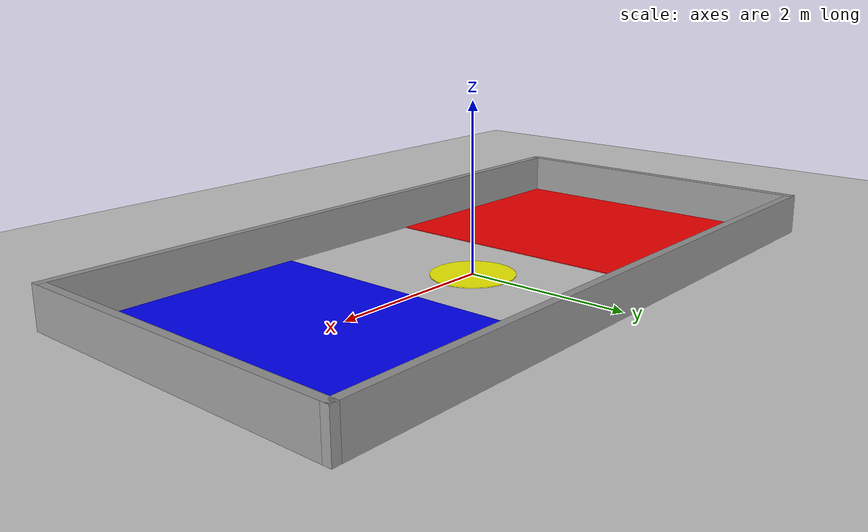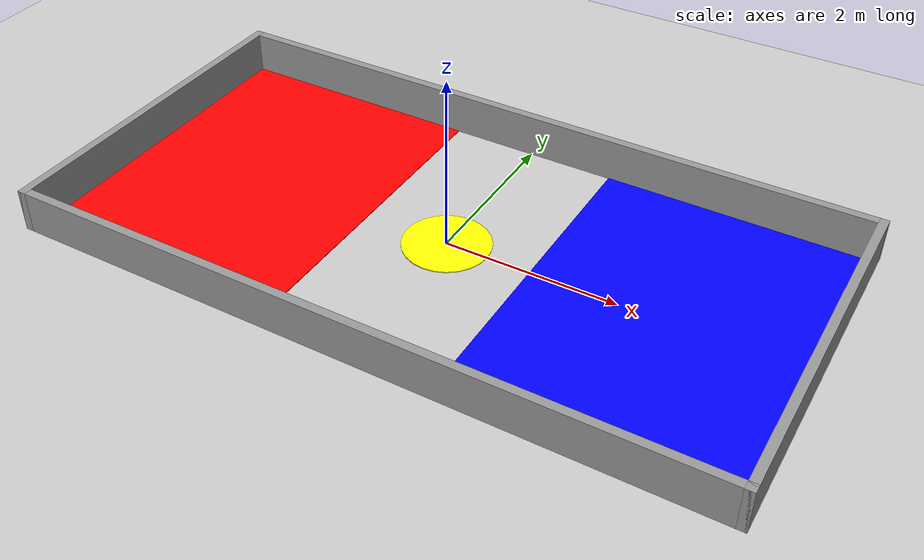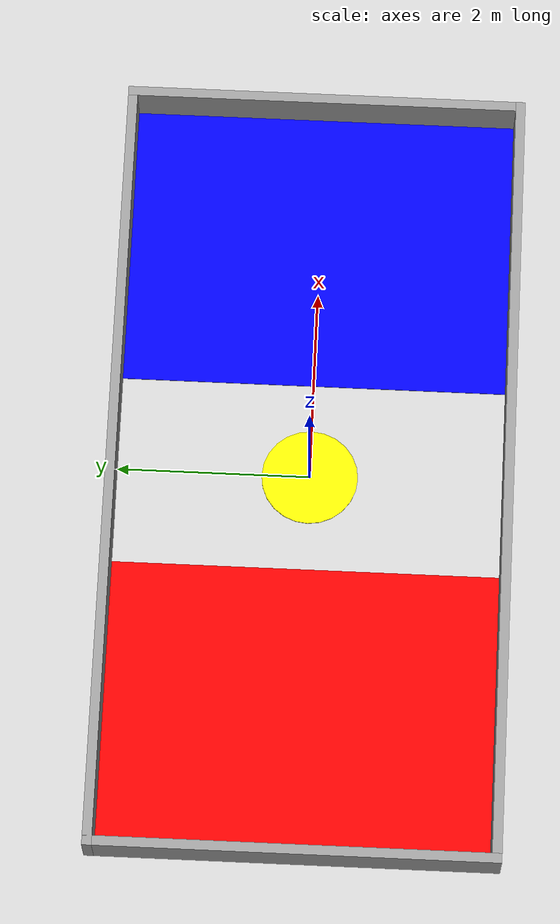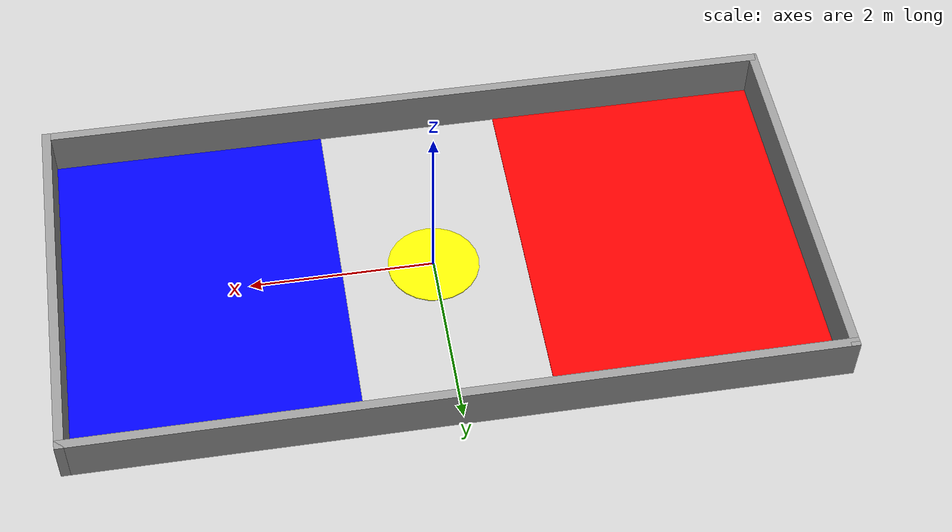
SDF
<sdf version='1.7'>
  <world name='capture_the_flag_world'>

    <light name='sun' type='directional'>
      <cast_shadows>1</cast_shadows>
      <pose>0 0 10 0 0 0</pose>
      <diffuse>0.8 0.8 0.8 1</diffuse>
      <specular>0.2 0.2 0.2 1</specular>
      <attenuation>
        <range>1000</range>
        <constant>0.9</constant>
        <linear>0.01</linear>
        <quadratic>0.001</quadratic>
      </attenuation>
      <direction>-0.5 0.1 -0.9</direction>
      <spot>
        <inner_angle>0</inner_angle>
        <outer_angle>0</outer_angle>
        <falloff>0</falloff>
      </spot>
    </light>

    <model name='ground_plane'>
      <static>1</static>
      <self_collide>0</self_collide>
      <enable_wind>0</enable_wind>
      <kinematic>0</kinematic>

      <link name='ground_plane_link'>
        <collision name='ground_plane_collision'>
          <geometry>
            <plane>
              <normal>0 0 1</normal>
              <size>100 100</size>
            </plane>
          </geometry>
          <surface>
            <friction>
              <ode>
                <mu>100</mu>
                <mu2>50</mu2>
              </ode>
            </friction>
          </surface>
          <max_contacts>10</max_contacts>
        </collision>
        <visual name='ground_plane_visual'>
          <cast_shadows>0</cast_shadows>
          <geometry>
            <plane>
              <normal>0 0 1</normal>
              <size>100 100</size>
            </plane>
          </geometry>
          <material>
            <script>
              <uri>file://media/materials/scripts/gazebo.material</uri>
              <name>Gazebo/Grey</name>
            </script>
          </material>
        </visual>
      </link>
    </model>

    <model name='red_base'>
      <pose>-2.5 0 0 0 0 0</pose>
      <self_collide>0</self_collide>
      <enable_wind>0</enable_wind>
      <kinematic>0</kinematic>
      <static>1</static>

      <link name='red_base_link'>
        <collision name='red_base_collision'>
          <geometry>
            <box>
              <size>3 4 0.01</size>
            </box>
          </geometry>
          <max_contacts>10</max_contacts>
          <surface>
            <friction>
              <ode>
                <mu>100</mu>
                <mu2>50</mu2>
              </ode>
            </friction>
          </surface>
        </collision>
        <visual name='red_base_visual'>
          <geometry>
            <box>
              <size>3 4 0.01</size>
            </box>
          </geometry>
          <material>
            <ambient>1 0 0 1</ambient>
            <diffuse>1 0 0 1</diffuse>
          </material>
        </visual>
      </link>
    </model>

    <model name='blue_base'>
      <pose>2.5 0 0 0 0 0</pose>
      <static>1</static>
      <self_collide>0</self_collide>
      <enable_wind>0</enable_wind>
      <kinematic>0</kinematic>

      <link name='blue_base_link'>

        <collision name='blue_base_Collision'>
          <geometry>
            <box>
              <size>3 4 0.01</size>
            </box>
          </geometry>
        </collision>

        <visual name='blue_base_Visual'>
          <geometry>
            <box>
              <size>3 4 0.01</size>
            </box>
          </geometry>
          <material>
            <ambient>0 0 1 1</ambient>
            <diffuse>0 0 1 1</diffuse>
          </material>
        </visual>

      </link>
    </model>

    <model name='center_zone'>
      <pose>0 0 0 0 0 0</pose>
      <static>1</static>
      <self_collide>0</self_collide>
      <enable_wind>0</enable_wind>
      <kinematic>0</kinematic>

      <link name='center_zone_link'>
        <collision name='center_zone_collision'>
          <geometry>
            <cylinder>
              <radius>0.5</radius>
              <length>0.01</length>
            </cylinder>
          </geometry>
          <max_contacts>10</max_contacts>
        </collision>
        <visual name='center_zone_visual'>
          <geometry>
            <cylinder>
              <radius>0.5</radius>
              <length>0.01</length>
            </cylinder>
          </geometry>
          <material>
            <ambient>1 1 0 1</ambient>
            <diffuse>1 1 0 1</diffuse>
          </material>
        </visual>
      </link>
    </model>

    <model name='paredes_arena'>
      <pose>0 0 0 0 0 0</pose>
      <scale>1 1 1</scale>

      <link name='parede_lateral_inferior'>
        <pose>0 -2.05 0 0 -0 0</pose>
        <self_collide>0</self_collide>
        <enable_wind>0</enable_wind>
        <kinematic>0</kinematic>

        <collision name='parede_lateral_inferior_collision'>
          <pose>0 0 0.25 0 -0 0</pose>
          <geometry>
            <box>
              <size>8.2 0.1 0.5</size>
            </box>
          </geometry>

        </collision>
        <visual name='parede_lateral_inferior_visual'>
          <pose>0 0 0.25 0 -0 0</pose>

          <geometry>
            <box>
              <size>8.2 0.1 0.5</size>
            </box>
          </geometry>

          <material>
            <script>
              <uri>file://media/materials/scripts/gazebo.material</uri>
              <name>Gazebo/Grey</name>
            </script>
            <ambient>1 1 1 1</ambient>
          </material>
          <meta>
            <layer>0</layer>
          </meta>
        </visual>
      </link>

      <link name='parede_fundo_blue'>
        <pose>4.05 0 0 0 -0 1.5708</pose>
        <self_collide>0</self_collide>
        <enable_wind>0</enable_wind>
        <kinematic>0</kinematic>

        <collision name='parede_fundo_blue_collision'>
          <pose>0 0 0.25 0 0 0</pose>
          <geometry>
            <box>
              <size>4.2 0.1 0.5</size>
            </box>
          </geometry>
        </collision>

        <visual name='parede_fundo_blue_visual'>
          <pose>0 0 0.25 0 -0 0</pose>
          <geometry>
            <box>
              <size>4.2 0.1 0.5</size>
            </box>
          </geometry>
          <material>
            <script>
              <uri>file://media/materials/scripts/gazebo.material</uri>
              <name>Gazebo/Grey</name>
            </script>
            <ambient>1 1 1 1</ambient>
          </material>
          <meta>
            <layer>0</layer>
          </meta>
        </visual>

      </link>

      <link name='parede_lateral_superior'>
        <pose>0 2.05 0 0 0 3.14159</pose>
        <self_collide>0</self_collide>
        <enable_wind>0</enable_wind>
        <kinematic>0</kinematic>

        <collision name='parede_lateral_superior_collision'>
          <pose>0 0 0.25 0 -0 0</pose>
          <geometry>
            <box>
              <size>8.2 0.1 0.5</size>
            </box>
          </geometry>
        </collision>

        <visual name='parede_lateral_superior_visual'>
          <pose>0 0 0.25 0 0 0</pose>
          <geometry>
            <box>
              <size>8.2 0.1 0.5</size>
            </box>
          </geometry>
          <material>
            <script>
              <uri>file://media/materials/scripts/gazebo.material</uri>
              <name>Gazebo/Grey</name>
            </script>
            <ambient>1 1 1 1</ambient>
          </material>
          <meta>
            <layer>0</layer>
          </meta>
        </visual>
      </link>

      <link name='parede_fund_red'>
        <pose>-4.05 0 0 0 0 -1.5708</pose>
        <self_collide>0</self_collide>
        <enable_wind>0</enable_wind>
        <kinematic>0</kinematic>

        <collision name='parede_fund_red_collision'>
          <pose>0 0 0.25 0 -0 0</pose>
          <geometry>
            <box>
              <size>4.2 0.1 0.5</size>
            </box>
          </geometry>
        </collision>

        <visual name='parede_fund_red_visual'>
          <pose>0 0 0.25 0 -0 0</pose>
          <geometry>
            <box>
              <size>4.2 0.1 0.5</size>
            </box>
          </geometry>
          <material>
            <script>
              <uri>file://media/materials/scripts/gazebo.material</uri>
              <name>Gazebo/Grey</name>
            </script>
            <ambient>1 1 1 1</ambient>
          </material>
          <meta>
            <layer>0</layer>
          </meta>
        </visual>

      </link>

    </model>

  </world>
</sdf>
